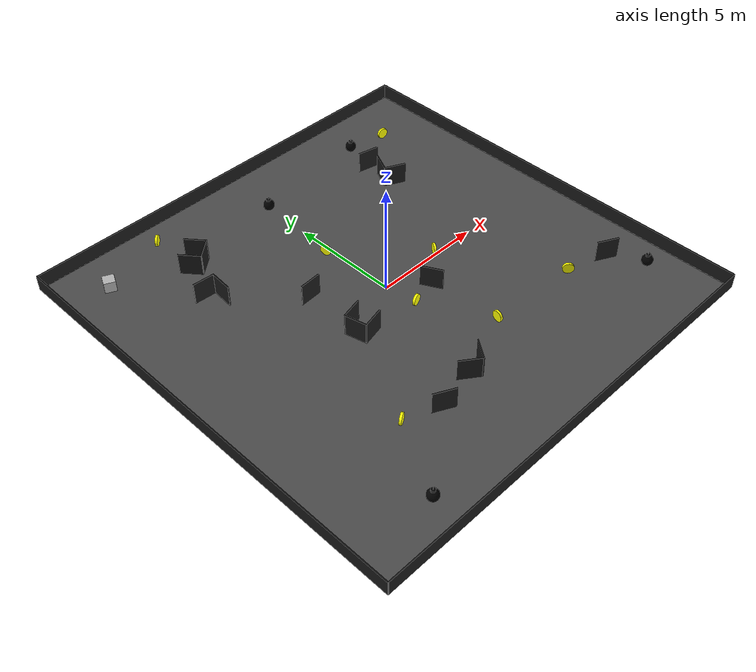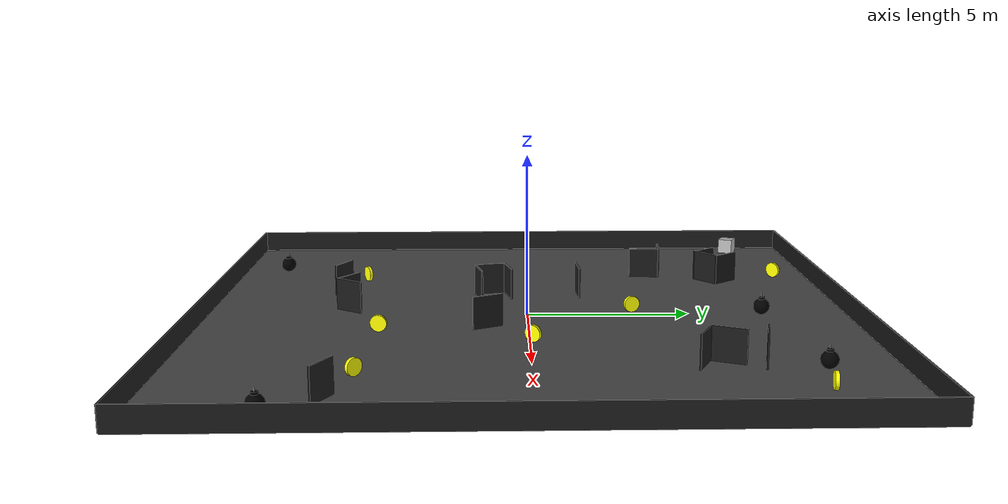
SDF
<sdf version="1.6">
 <world name="default">
  <model name="labrob_ground">
   <static>1</static>
   <link name="link">
    <collision name="collision">
     <geometry><plane><normal>0 0 1</normal><size>20 20</size></plane></geometry>
     <surface><contact><collide_bitmask>2</collide_bitmask></contact></surface>
    </collision>
    <visual name="visual">
     <cast_shadows>0</cast_shadows>
     <geometry><plane><normal>0 0 1</normal><size>20 20</size></plane></geometry>
     <material>
      <script>
       <uri>model://labrob_ground/materials/scripts/</uri>
       <uri>model://labrob_ground/materials/textures/</uri>
       <name>Labrob/AsphaltGround</name>
      </script>
     </material>
    </visual>
   </link>
  </model>
  <light name="sun" type="directional">
   <pose>0 0 10 0 -0 0</pose>
   <diffuse>0.8 0.8 0.8 1</diffuse>
   <specular>0.2 0.2 0.2 1</specular>
   <attenuation>
    <range>1000</range>
    <constant>0.9</constant>
    <linear>0.01</linear>
    <quadratic>0.001</quadratic>
   </attenuation>
   <direction>-0.5 0.1 -0.9</direction>
  </light>
  <model name="borders">
   <static>1</static>
   <link name="chassis_pos_x">
    <pose>10 0 0.35 0 -0 1.57079</pose>
    <collision name="collision_pos_x"><geometry><box><size>20 0.05 0.7</size></box></geometry></collision>
    <visual name="visual">
     <geometry><box><size>20 0.05 0.7</size></box></geometry>
     <material>
      <ambient>0.1 0.1 0.1 1</ambient>
      <diffuse>0.1 0.1 0.1 1</diffuse>
      <specular>0.1 0.1 0.1 1</specular>
      <emissive>0 0 0 0</emissive>
     </material>
    </visual>
    <sensor name="contact_sensor_1" type="contact">
     <plugin name="my_contact_plugin" filename="libgazebo_ros_bumper.so">
      <bumperTopicName>border_bumper</bumperTopicName>
      <frameName>world</frameName>
     </plugin>
     <contact><collision>collision_pos_x</collision><topic>__default_topic__</topic></contact>
    </sensor>
   </link>
   <link name="chassis_neg_x">
    <pose>-10 0 0.35 0 -0 1.57079</pose>
    <collision name="collision_neg_x"><geometry><box><size>20 0.05 0.7</size></box></geometry></collision>
    <visual name="visual">
     <geometry><box><size>20 0.05 0.7</size></box></geometry>
     <material>
      <ambient>0.1 0.1 0.1 1</ambient>
      <diffuse>0.1 0.1 0.1 1</diffuse>
      <specular>0.1 0.1 0.1 1</specular>
      <emissive>0 0 0 0</emissive>
     </material>
    </visual>
    <sensor name="contact_sensor_2" type="contact">
     <plugin name="my_contact_plugin" filename="libgazebo_ros_bumper.so">
      <bumperTopicName>border_bumper</bumperTopicName>
      <frameName>world</frameName>
     </plugin>
     <contact><collision>collision_neg_x</collision><topic>__default_topic__</topic></contact>
    </sensor>
   </link>
   <link name="chassis_pos_y">
    <pose>0 10 0.35 0 -0 0</pose>
    <collision name="collision_pos_y"><geometry><box><size>20 0.05 0.7</size></box></geometry></collision>
    <visual name="visual">
     <geometry><box><size>20 0.05 0.7</size></box></geometry>
     <material>
      <ambient>0.1 0.1 0.1 1</ambient>
      <diffuse>0.1 0.1 0.1 1</diffuse>
      <specular>0.1 0.1 0.1 1</specular>
      <emissive>0 0 0 0</emissive>
     </material>
    </visual>
    <sensor name="contact_sensor_3" type="contact">
     <plugin name="my_contact_plugin" filename="libgazebo_ros_bumper.so">
      <bumperTopicName>border_bumper</bumperTopicName>
      <frameName>world</frameName>
     </plugin>
     <contact><collision>collision_pos_y</collision><topic>__default_topic__</topic></contact>
    </sensor>
   </link>
   <link name="chassis_neg_y">
    <pose>0 -10 0.35 0 -0 0</pose>
    <collision name="collision_neg_y"><geometry><box><size>20 0.05 0.7</size></box></geometry></collision>
    <visual name="visual">
     <geometry><box><size>20 0.05 0.7</size></box></geometry>
     <material>
      <ambient>0.1 0.1 0.1 1</ambient>
      <diffuse>0.1 0.1 0.1 1</diffuse>
      <specular>0.1 0.1 0.1 1</specular>
      <emissive>0 0 0 0</emissive>
     </material>
    </visual>
    <sensor name="contact_sensor_4" type="contact">
     <plugin name="my_contact_plugin" filename="libgazebo_ros_bumper.so">
      <bumperTopicName>border_bumper</bumperTopicName>
      <frameName>world</frameName>
     </plugin>
     <contact><collision>collision_neg_y</collision><topic>__default_topic__</topic></contact>
    </sensor>
   </link>
  </model>
  <gravity>0 0 -9.8</gravity>
  <magnetic_field>6e-06 2.3e-05 -4.2e-05</magnetic_field>
  <atmosphere type="adiabatic"/>
  <physics name="default_physics" default="0" type="ode">
   <max_step_size>0.001</max_step_size>
   <real_time_factor>1</real_time_factor>
   <real_time_update_rate>1000</real_time_update_rate>
  </physics>
  <scene><ambient>0.4 0.4 0.4 1</ambient><background>0.7 0.7 0.7 1</background><shadows>1</shadows></scene>
  <spherical_coordinates>
   <surface_model>EARTH_WGS84</surface_model>
   <latitude_deg>0</latitude_deg>
   <longitude_deg>0</longitude_deg>
   <elevation>0</elevation>
   <heading_deg>0</heading_deg>
  </spherical_coordinates>
  <model name="coin_0">
   <link name="chassis">
    <pose>0 0 0.26 0 -0 0</pose>
    <collision name="box_collision">
     <geometry><sphere><radius>0.25</radius></sphere></geometry>
     <surface>
      <contact><collide_bitmask>1</collide_bitmask><ode><min_depth>10</min_depth><kp>1</kp></ode></contact>
     </surface>
    </collision>
    <visual name="visual">
     <pose>0 0 0 0 1.57 0</pose>
     <geometry><cylinder><radius>0.25</radius><length>0.1</length></cylinder></geometry>
     <material>
      <ambient>1 1 0 1</ambient>
      <diffuse>1 1 0 1</diffuse>
      <specular>0.1 0.1 0.1 1</specular>
      <emissive>0 0 0 0</emissive>
     </material>
    </visual>
    <sensor name="contact_sensor_1" type="contact">
     <plugin name="my_contact_plugin" filename="libgazebo_ros_bumper.so">
      <bumperTopicName>coin_bumper</bumperTopicName>
      <frameName>world</frameName>
     </plugin>
     <contact><collision>box_collision</collision><topic>__default_topic__</topic></contact>
    </sensor>
    <inertial>
     <inertia><ixx>1</ixx><ixy>0</ixy><ixz>0</ixz><iyy>1</iyy><iyz>0</iyz><izz>1</izz></inertia>
     <mass>1</mass>
    </inertial>
   </link>
   <joint name="coin_hinge" type="revolute">
    <pose>0 0 0.26 0 -0 0</pose>
    <child>chassis</child>
    <parent>world</parent>
    <axis>
     <xyz>0 0 1</xyz>
     <use_parent_model_frame>1</use_parent_model_frame>
     <limit><lower>-1e+16</lower><upper>1e+16</upper></limit>
     <dynamics><spring_reference>0</spring_reference><spring_stiffness>0</spring_stiffness></dynamics>
    </axis>
   </joint>
   <pose>0.179485 -1.53193 0 0 -0 1.85607</pose>
  </model>
  <model name="coin_1">
   <link name="chassis">
    <pose>0 0 0.26 0 -0 0</pose>
    <collision name="box_collision">
     <geometry><sphere><radius>0.25</radius></sphere></geometry>
     <surface>
      <contact><collide_bitmask>1</collide_bitmask><ode><min_depth>10</min_depth><kp>1</kp></ode></contact>
     </surface>
    </collision>
    <visual name="visual">
     <pose>0 0 0 0 1.57 0</pose>
     <geometry><cylinder><radius>0.25</radius><length>0.1</length></cylinder></geometry>
     <material>
      <ambient>1 1 0 1</ambient>
      <diffuse>1 1 0 1</diffuse>
      <specular>0.1 0.1 0.1 1</specular>
      <emissive>0 0 0 0</emissive>
     </material>
    </visual>
    <sensor name="contact_sensor_1" type="contact">
     <plugin name="my_contact_plugin" filename="libgazebo_ros_bumper.so">
      <bumperTopicName>coin_bumper</bumperTopicName>
      <frameName>world</frameName>
     </plugin>
     <contact><collision>box_collision</collision><topic>__default_topic__</topic></contact>
    </sensor>
    <inertial>
     <inertia><ixx>1</ixx><ixy>0</ixy><ixz>0</ixz><iyy>1</iyy><iyz>0</iyz><izz>1</izz></inertia>
     <mass>1</mass>
    </inertial>
   </link>
   <joint name="coin_hinge" type="revolute">
    <pose>0 0 0.26 0 -0 0</pose>
    <child>chassis</child>
    <parent>world</parent>
    <axis>
     <xyz>0 0 1</xyz>
     <use_parent_model_frame>1</use_parent_model_frame>
     <limit><lower>-1e+16</lower><upper>1e+16</upper></limit>
     <dynamics><spring_reference>0</spring_reference><spring_stiffness>0</spring_stiffness></dynamics>
    </axis>
   </joint>
   <pose>1.76429 -4.46358 0 0 0 -0.158928</pose>
  </model>
  <model name="coin_2">
   <link name="chassis">
    <pose>0 0 0.26 0 -0 0</pose>
    <collision name="box_collision">
     <geometry><sphere><radius>0.25</radius></sphere></geometry>
     <surface>
      <contact><collide_bitmask>1</collide_bitmask><ode><min_depth>10</min_depth><kp>1</kp></ode></contact>
     </surface>
    </collision>
    <visual name="visual">
     <pose>0 0 0 0 1.57 0</pose>
     <geometry><cylinder><radius>0.25</radius><length>0.1</length></cylinder></geometry>
     <material>
      <ambient>1 1 0 1</ambient>
      <diffuse>1 1 0 1</diffuse>
      <specular>0.1 0.1 0.1 1</specular>
      <emissive>0 0 0 0</emissive>
     </material>
    </visual>
    <sensor name="contact_sensor_1" type="contact">
     <plugin name="my_contact_plugin" filename="libgazebo_ros_bumper.so">
      <bumperTopicName>coin_bumper</bumperTopicName>
      <frameName>world</frameName>
     </plugin>
     <contact><collision>box_collision</collision><topic>__default_topic__</topic></contact>
    </sensor>
    <inertial>
     <inertia><ixx>1</ixx><ixy>0</ixy><ixz>0</ixz><iyy>1</iyy><iyz>0</iyz><izz>1</izz></inertia>
     <mass>1</mass>
    </inertial>
   </link>
   <joint name="coin_hinge" type="revolute">
    <pose>0 0 0.26 0 -0 0</pose>
    <child>chassis</child>
    <parent>world</parent>
    <axis>
     <xyz>0 0 1</xyz>
     <use_parent_model_frame>1</use_parent_model_frame>
     <limit><lower>-1e+16</lower><upper>1e+16</upper></limit>
     <dynamics><spring_reference>0</spring_reference><spring_stiffness>0</spring_stiffness></dynamics>
    </axis>
   </joint>
   <pose>5.98475 -4.69508 0 0 0 -2.35718</pose>
  </model>
  <model name="coin_3">
   <link name="chassis">
    <pose>0 0 0.26 0 -0 0</pose>
    <collision name="box_collision">
     <geometry><sphere><radius>0.25</radius></sphere></geometry>
     <surface>
      <contact><collide_bitmask>1</collide_bitmask><ode><min_depth>10</min_depth><kp>1</kp></ode></contact>
     </surface>
    </collision>
    <visual name="visual">
     <pose>0 0 0 0 1.57 0</pose>
     <geometry><cylinder><radius>0.25</radius><length>0.1</length></cylinder></geometry>
     <material>
      <ambient>1 1 0 1</ambient>
      <diffuse>1 1 0 1</diffuse>
      <specular>0.1 0.1 0.1 1</specular>
      <emissive>0 0 0 0</emissive>
     </material>
    </visual>
    <sensor name="contact_sensor_1" type="contact">
     <plugin name="my_contact_plugin" filename="libgazebo_ros_bumper.so">
      <bumperTopicName>coin_bumper</bumperTopicName>
      <frameName>world</frameName>
     </plugin>
     <contact><collision>box_collision</collision><topic>__default_topic__</topic></contact>
    </sensor>
    <inertial>
     <inertia><ixx>1</ixx><ixy>0</ixy><ixz>0</ixz><iyy>1</iyy><iyz>0</iyz><izz>1</izz></inertia>
     <mass>1</mass>
    </inertial>
   </link>
   <joint name="coin_hinge" type="revolute">
    <pose>0 0 0.26 0 -0 0</pose>
    <child>chassis</child>
    <parent>world</parent>
    <axis>
     <xyz>0 0 1</xyz>
     <use_parent_model_frame>1</use_parent_model_frame>
     <limit><lower>-1e+16</lower><upper>1e+16</upper></limit>
     <dynamics><spring_reference>0</spring_reference><spring_stiffness>0</spring_stiffness></dynamics>
    </axis>
   </joint>
   <pose>-4.69873 -5.44036 0 0 -0 2.09927</pose>
  </model>
  <model name="coin_6">
   <link name="chassis">
    <pose>0 0 0.26 0 -0 0</pose>
    <collision name="box_collision">
     <geometry><sphere><radius>0.25</radius></sphere></geometry>
     <surface>
      <contact><collide_bitmask>1</collide_bitmask><ode><min_depth>10</min_depth><kp>1</kp></ode></contact>
     </surface>
    </collision>
    <visual name="visual">
     <pose>0 0 0 0 1.57 0</pose>
     <geometry><cylinder><radius>0.25</radius><length>0.1</length></cylinder></geometry>
     <material>
      <ambient>1 1 0 1</ambient>
      <diffuse>1 1 0 1</diffuse>
      <specular>0.1 0.1 0.1 1</specular>
      <emissive>0 0 0 0</emissive>
     </material>
    </visual>
    <sensor name="contact_sensor_1" type="contact">
     <plugin name="my_contact_plugin" filename="libgazebo_ros_bumper.so">
      <bumperTopicName>coin_bumper</bumperTopicName>
      <frameName>world</frameName>
     </plugin>
     <contact><collision>box_collision</collision><topic>__default_topic__</topic></contact>
    </sensor>
    <inertial>
     <inertia><ixx>1</ixx><ixy>0</ixy><ixz>0</ixz><iyy>1</iyy><iyz>0</iyz><izz>1</izz></inertia>
     <mass>1</mass>
    </inertial>
   </link>
   <joint name="coin_hinge" type="revolute">
    <pose>0 0 0.26 0 -0 0</pose>
    <child>chassis</child>
    <parent>world</parent>
    <axis>
     <xyz>0 0 1</xyz>
     <use_parent_model_frame>1</use_parent_model_frame>
     <limit><lower>-1e+16</lower><upper>1e+16</upper></limit>
     <dynamics><spring_reference>0</spring_reference><spring_stiffness>0</spring_stiffness></dynamics>
    </axis>
   </joint>
   <pose>-4.94528 8.82124 0 0 -0 2.32258</pose>
  </model>
  <model name="coin_7">
   <link name="chassis">
    <pose>0 0 0.26 0 -0 0</pose>
    <collision name="box_collision">
     <geometry><sphere><radius>0.25</radius></sphere></geometry>
     <surface>
      <contact><collide_bitmask>1</collide_bitmask><ode><min_depth>10</min_depth><kp>1</kp></ode></contact>
     </surface>
    </collision>
    <visual name="visual">
     <pose>0 0 0 0 1.57 0</pose>
     <geometry><cylinder><radius>0.25</radius><length>0.1</length></cylinder></geometry>
     <material>
      <ambient>1 1 0 1</ambient>
      <diffuse>1 1 0 1</diffuse>
      <specular>0.1 0.1 0.1 1</specular>
      <emissive>0 0 0 0</emissive>
     </material>
    </visual>
    <sensor name="contact_sensor_1" type="contact">
     <plugin name="my_contact_plugin" filename="libgazebo_ros_bumper.so">
      <bumperTopicName>coin_bumper</bumperTopicName>
      <frameName>world</frameName>
     </plugin>
     <contact><collision>box_collision</collision><topic>__default_topic__</topic></contact>
    </sensor>
    <inertial>
     <inertia><ixx>1</ixx><ixy>0</ixy><ixz>0</ixz><iyy>1</iyy><iyz>0</iyz><izz>1</izz></inertia>
     <mass>1</mass>
    </inertial>
   </link>
   <joint name="coin_hinge" type="revolute">
    <pose>0 0 0.26 0 -0 0</pose>
    <child>chassis</child>
    <parent>world</parent>
    <axis>
     <xyz>0 0 1</xyz>
     <use_parent_model_frame>1</use_parent_model_frame>
     <limit><lower>-1e+16</lower><upper>1e+16</upper></limit>
     <dynamics><spring_reference>0</spring_reference><spring_stiffness>0</spring_stiffness></dynamics>
    </axis>
   </joint>
   <pose>-0.293643 3.28118 0 0 -0 0.317468</pose>
  </model>
  <model name="coin_8">
   <link name="chassis">
    <pose>0 0 0.26 0 -0 0</pose>
    <collision name="box_collision">
     <geometry><sphere><radius>0.25</radius></sphere></geometry>
     <surface>
      <contact><collide_bitmask>1</collide_bitmask><ode><min_depth>10</min_depth><kp>1</kp></ode></contact>
     </surface>
    </collision>
    <visual name="visual">
     <pose>0 0 0 0 1.57 0</pose>
     <geometry><cylinder><radius>0.25</radius><length>0.1</length></cylinder></geometry>
     <material>
      <ambient>1 1 0 1</ambient>
      <diffuse>1 1 0 1</diffuse>
      <specular>0.1 0.1 0.1 1</specular>
      <emissive>0 0 0 0</emissive>
     </material>
    </visual>
    <sensor name="contact_sensor_1" type="contact">
     <plugin name="my_contact_plugin" filename="libgazebo_ros_bumper.so">
      <bumperTopicName>coin_bumper</bumperTopicName>
      <frameName>world</frameName>
     </plugin>
     <contact><collision>box_collision</collision><topic>__default_topic__</topic></contact>
    </sensor>
    <inertial>
     <inertia><ixx>1</ixx><ixy>0</ixy><ixz>0</ixz><iyy>1</iyy><iyz>0</iyz><izz>1</izz></inertia>
     <mass>1</mass>
    </inertial>
   </link>
   <joint name="coin_hinge" type="revolute">
    <pose>0 0 0.26 0 -0 0</pose>
    <child>chassis</child>
    <parent>world</parent>
    <axis>
     <xyz>0 0 1</xyz>
     <use_parent_model_frame>1</use_parent_model_frame>
     <limit><lower>-1e+16</lower><upper>1e+16</upper></limit>
     <dynamics><spring_reference>0</spring_reference><spring_stiffness>0</spring_stiffness></dynamics>
    </axis>
   </joint>
   <pose>7.4107 7.5913 0 0 0 -1.68753</pose>
  </model>
  <model name="coin_9">
   <link name="chassis">
    <pose>0 0 0.26 0 -0 0</pose>
    <collision name="box_collision">
     <geometry><sphere><radius>0.25</radius></sphere></geometry>
     <surface>
      <contact><collide_bitmask>1</collide_bitmask><ode><min_depth>10</min_depth><kp>1</kp></ode></contact>
     </surface>
    </collision>
    <visual name="visual">
     <pose>0 0 0 0 1.57 0</pose>
     <geometry><cylinder><radius>0.25</radius><length>0.1</length></cylinder></geometry>
     <material>
      <ambient>1 1 0 1</ambient>
      <diffuse>1 1 0 1</diffuse>
      <specular>0.1 0.1 0.1 1</specular>
      <emissive>0 0 0 0</emissive>
     </material>
    </visual>
    <sensor name="contact_sensor_1" type="contact">
     <plugin name="my_contact_plugin" filename="libgazebo_ros_bumper.so">
      <bumperTopicName>coin_bumper</bumperTopicName>
      <frameName>world</frameName>
     </plugin>
     <contact><collision>box_collision</collision><topic>__default_topic__</topic></contact>
    </sensor>
    <inertial>
     <inertia><ixx>1</ixx><ixy>0</ixy><ixz>0</ixz><iyy>1</iyy><iyz>0</iyz><izz>1</izz></inertia>
     <mass>1</mass>
    </inertial>
   </link>
   <joint name="coin_hinge" type="revolute">
    <pose>0 0 0.26 0 -0 0</pose>
    <child>chassis</child>
    <parent>world</parent>
    <axis>
     <xyz>0 0 1</xyz>
     <use_parent_model_frame>1</use_parent_model_frame>
     <limit><lower>-1e+16</lower><upper>1e+16</upper></limit>
     <dynamics><spring_reference>0</spring_reference><spring_stiffness>0</spring_stiffness></dynamics>
    </axis>
   </joint>
   <pose>2.96582 0.086113 0 0 -0 2.58066</pose>
  </model>
  <model name="bomb_0">
   <link name="chassis">
    <pose>0 0 0.25 0 -0 0</pose>
    <collision name="box_collision">
     <geometry><sphere><radius>0.25</radius></sphere></geometry>
     <surface>
      <contact><collide_bitmask>1</collide_bitmask><ode><min_depth>10</min_depth><kp>1</kp></ode></contact>
     </surface>
    </collision>
    <visual name="visual">
     <pose>0 0 0.2 0 -0 0</pose>
     <geometry><cylinder><radius>0.1</radius><length>0.2</length></cylinder></geometry>
     <material>
      <ambient>0 0 0 1</ambient>
      <diffuse>0 0 0 1</diffuse>
      <specular>0.1 0.1 0.1 1</specular>
      <emissive>0 0 0 0</emissive>
     </material>
    </visual>
    <visual name="visual2">
     <geometry><sphere><radius>0.25</radius></sphere></geometry>
     <material>
      <ambient>0 0 0 1</ambient>
      <diffuse>0 0 0 1</diffuse>
      <specular>0.1 0.1 0.1 1</specular>
      <emissive>0 0 0 0</emissive>
     </material>
    </visual>
    <visual name="visual3">
     <pose>0 0 0.3 0 -0 0</pose>
     <geometry><cylinder><radius>0.01</radius><length>0.2</length></cylinder></geometry>
     <material>
      <ambient>1 1 1 1</ambient>
      <diffuse>1 1 1 1</diffuse>
      <specular>0.1 0.1 0.1 1</specular>
      <emissive>0 0 0 0</emissive>
     </material>
    </visual>
    <sensor name="contact_sensor_1" type="contact">
     <plugin name="my_contact_plugin" filename="libgazebo_ros_bumper.so">
      <bumperTopicName>bomb_bumper</bumperTopicName>
      <frameName>world</frameName>
     </plugin>
     <contact><collision>box_collision</collision><topic>__default_topic__</topic></contact>
    </sensor>
    <inertial>
     <inertia><ixx>1</ixx><ixy>0</ixy><ixz>0</ixz><iyy>1</iyy><iyz>0</iyz><izz>1</izz></inertia>
     <mass>1</mass>
    </inertial>
   </link>
   <joint name="bomb_hinge" type="revolute">
    <pose>0 0 0.2 0 -0 0</pose>
    <child>chassis</child>
    <parent>world</parent>
    <axis>
     <xyz>0 0 0</xyz>
     <use_parent_model_frame>1</use_parent_model_frame>
     <limit><lower>-1e+16</lower><upper>1e+16</upper></limit>
     <dynamics><spring_reference>0</spring_reference><spring_stiffness>0</spring_stiffness></dynamics>
    </axis>
   </joint>
   <pose>8.72929 -6.70741 0 0 -0 0</pose>
  </model>
  <model name="bomb_1">
   <link name="chassis">
    <pose>0 0 0.25 0 -0 0</pose>
    <collision name="box_collision">
     <geometry><sphere><radius>0.25</radius></sphere></geometry>
     <surface>
      <contact><collide_bitmask>1</collide_bitmask><ode><min_depth>10</min_depth><kp>1</kp></ode></contact>
     </surface>
    </collision>
    <visual name="visual">
     <pose>0 0 0.2 0 -0 0</pose>
     <geometry><cylinder><radius>0.1</radius><length>0.2</length></cylinder></geometry>
     <material>
      <ambient>0 0 0 1</ambient>
      <diffuse>0 0 0 1</diffuse>
      <specular>0.1 0.1 0.1 1</specular>
      <emissive>0 0 0 0</emissive>
     </material>
    </visual>
    <visual name="visual2">
     <geometry><sphere><radius>0.25</radius></sphere></geometry>
     <material>
      <ambient>0 0 0 1</ambient>
      <diffuse>0 0 0 1</diffuse>
      <specular>0.1 0.1 0.1 1</specular>
      <emissive>0 0 0 0</emissive>
     </material>
    </visual>
    <visual name="visual3">
     <pose>0 0 0.3 0 -0 0</pose>
     <geometry><cylinder><radius>0.01</radius><length>0.2</length></cylinder></geometry>
     <material>
      <ambient>1 1 1 1</ambient>
      <diffuse>1 1 1 1</diffuse>
      <specular>0.1 0.1 0.1 1</specular>
      <emissive>0 0 0 0</emissive>
     </material>
    </visual>
    <sensor name="contact_sensor_1" type="contact">
     <plugin name="my_contact_plugin" filename="libgazebo_ros_bumper.so">
      <bumperTopicName>bomb_bumper</bumperTopicName>
      <frameName>world</frameName>
     </plugin>
     <contact><collision>box_collision</collision><topic>__default_topic__</topic></contact>
    </sensor>
    <inertial>
     <inertia><ixx>1</ixx><ixy>0</ixy><ixz>0</ixz><iyy>1</iyy><iyz>0</iyz><izz>1</izz></inertia>
     <mass>1</mass>
    </inertial>
   </link>
   <joint name="bomb_hinge" type="revolute">
    <pose>0 0 0.2 0 -0 0</pose>
    <child>chassis</child>
    <parent>world</parent>
    <axis>
     <xyz>0 0 0</xyz>
     <use_parent_model_frame>1</use_parent_model_frame>
     <limit><lower>-1e+16</lower><upper>1e+16</upper></limit>
     <dynamics><spring_reference>0</spring_reference><spring_stiffness>0</spring_stiffness></dynamics>
    </axis>
   </joint>
   <pose>-6.34067 -8.50757 1e-06 0.001707 -0 0</pose>
  </model>
  <model name="bomb_3">
   <link name="chassis">
    <pose>0 0 0.25 0 -0 0</pose>
    <collision name="box_collision">
     <geometry><sphere><radius>0.25</radius></sphere></geometry>
     <surface>
      <contact><collide_bitmask>1</collide_bitmask><ode><min_depth>10</min_depth><kp>1</kp></ode></contact>
     </surface>
    </collision>
    <visual name="visual">
     <pose>0 0 0.2 0 -0 0</pose>
     <geometry><cylinder><radius>0.1</radius><length>0.2</length></cylinder></geometry>
     <material>
      <ambient>0 0 0 1</ambient>
      <diffuse>0 0 0 1</diffuse>
      <specular>0.1 0.1 0.1 1</specular>
      <emissive>0 0 0 0</emissive>
     </material>
    </visual>
    <visual name="visual2">
     <geometry><sphere><radius>0.25</radius></sphere></geometry>
     <material>
      <ambient>0 0 0 1</ambient>
      <diffuse>0 0 0 1</diffuse>
      <specular>0.1 0.1 0.1 1</specular>
      <emissive>0 0 0 0</emissive>
     </material>
    </visual>
    <visual name="visual3">
     <pose>0 0 0.3 0 -0 0</pose>
     <geometry><cylinder><radius>0.01</radius><length>0.2</length></cylinder></geometry>
     <material>
      <ambient>1 1 1 1</ambient>
      <diffuse>1 1 1 1</diffuse>
      <specular>0.1 0.1 0.1 1</specular>
      <emissive>0 0 0 0</emissive>
     </material>
    </visual>
    <sensor name="contact_sensor_1" type="contact">
     <plugin name="my_contact_plugin" filename="libgazebo_ros_bumper.so">
      <bumperTopicName>bomb_bumper</bumperTopicName>
      <frameName>world</frameName>
     </plugin>
     <contact><collision>box_collision</collision><topic>__default_topic__</topic></contact>
    </sensor>
    <inertial>
     <inertia><ixx>1</ixx><ixy>0</ixy><ixz>0</ixz><iyy>1</iyy><iyz>0</iyz><izz>1</izz></inertia>
     <mass>1</mass>
    </inertial>
   </link>
   <joint name="bomb_hinge" type="revolute">
    <pose>0 0 0.2 0 -0 0</pose>
    <child>chassis</child>
    <parent>world</parent>
    <axis>
     <xyz>0 0 0</xyz>
     <use_parent_model_frame>1</use_parent_model_frame>
     <limit><lower>-1e+16</lower><upper>1e+16</upper></limit>
     <dynamics><spring_reference>0</spring_reference><spring_stiffness>0</spring_stiffness></dynamics>
    </axis>
   </joint>
   <pose>0.012015 7.3203 0 0 -0 0</pose>
  </model>
  <model name="bomb_4">
   <link name="chassis">
    <pose>0 0 0.25 0 -0 0</pose>
    <collision name="box_collision">
     <geometry><sphere><radius>0.25</radius></sphere></geometry>
     <surface>
      <contact><collide_bitmask>1</collide_bitmask><ode><min_depth>10</min_depth><kp>1</kp></ode></contact>
     </surface>
    </collision>
    <visual name="visual">
     <pose>0 0 0.2 0 -0 0</pose>
     <geometry><cylinder><radius>0.1</radius><length>0.2</length></cylinder></geometry>
     <material>
      <ambient>0 0 0 1</ambient>
      <diffuse>0 0 0 1</diffuse>
      <specular>0.1 0.1 0.1 1</specular>
      <emissive>0 0 0 0</emissive>
     </material>
    </visual>
    <visual name="visual2">
     <geometry><sphere><radius>0.25</radius></sphere></geometry>
     <material>
      <ambient>0 0 0 1</ambient>
      <diffuse>0 0 0 1</diffuse>
      <specular>0.1 0.1 0.1 1</specular>
      <emissive>0 0 0 0</emissive>
     </material>
    </visual>
    <visual name="visual3">
     <pose>0 0 0.3 0 -0 0</pose>
     <geometry><cylinder><radius>0.01</radius><length>0.2</length></cylinder></geometry>
     <material>
      <ambient>1 1 1 1</ambient>
      <diffuse>1 1 1 1</diffuse>
      <specular>0.1 0.1 0.1 1</specular>
      <emissive>0 0 0 0</emissive>
     </material>
    </visual>
    <sensor name="contact_sensor_1" type="contact">
     <plugin name="my_contact_plugin" filename="libgazebo_ros_bumper.so">
      <bumperTopicName>bomb_bumper</bumperTopicName>
      <frameName>world</frameName>
     </plugin>
     <contact><collision>box_collision</collision><topic>__default_topic__</topic></contact>
    </sensor>
    <inertial>
     <inertia><ixx>1</ixx><ixy>0</ixy><ixz>0</ixz><iyy>1</iyy><iyz>0</iyz><izz>1</izz></inertia>
     <mass>1</mass>
    </inertial>
   </link>
   <joint name="bomb_hinge" type="revolute">
    <pose>0 0 0.2 0 -0 0</pose>
    <child>chassis</child>
    <parent>world</parent>
    <axis>
     <xyz>0 0 0</xyz>
     <use_parent_model_frame>1</use_parent_model_frame>
     <limit><lower>-1e+16</lower><upper>1e+16</upper></limit>
     <dynamics><spring_reference>0</spring_reference><spring_stiffness>0</spring_stiffness></dynamics>
    </axis>
   </joint>
   <pose>5.61305 7.92236 0 0 -0 0</pose>
  </model>
  <model name="wall_1_0">
   <static>1</static>
   <link name="chassis">
    <pose>0 0 0.5 0 -0 0</pose>
    <collision name="barrier_collision"><geometry><box><size>1 0.05 1</size></box></geometry></collision>
    <visual name="visual">
     <geometry><box><size>1 0.05 1</size></box></geometry>
     <material>
      <ambient>0.1 0.1 0.1 1</ambient>
      <diffuse>0.1 0.1 0.1 1</diffuse>
      <specular>0.1 0.1 0.1 1</specular>
      <emissive>0 0 0 0</emissive>
     </material>
    </visual>
    <sensor name="contact_sensor_1" type="contact">
     <plugin name="my_contact_plugin" filename="libgazebo_ros_bumper.so">
      <bumperTopicName>obstacle_bumper</bumperTopicName>
      <frameName>world</frameName>
     </plugin>
     <contact><collision>barrier_collision</collision><topic>__default_topic__</topic></contact>
    </sensor>
   </link>
   <pose>7.82204 -5.25957 0 0 -0 2.67259</pose>
  </model>
  <model name="wall_1_1">
   <static>1</static>
   <link name="chassis">
    <pose>0 0 0.5 0 -0 0</pose>
    <collision name="barrier_collision"><geometry><box><size>1 0.05 1</size></box></geometry></collision>
    <visual name="visual">
     <geometry><box><size>1 0.05 1</size></box></geometry>
     <material>
      <ambient>0.1 0.1 0.1 1</ambient>
      <diffuse>0.1 0.1 0.1 1</diffuse>
      <specular>0.1 0.1 0.1 1</specular>
      <emissive>0 0 0 0</emissive>
     </material>
    </visual>
    <sensor name="contact_sensor_1" type="contact">
     <plugin name="my_contact_plugin" filename="libgazebo_ros_bumper.so">
      <bumperTopicName>obstacle_bumper</bumperTopicName>
      <frameName>world</frameName>
     </plugin>
     <contact><collision>barrier_collision</collision><topic>__default_topic__</topic></contact>
    </sensor>
   </link>
   <pose>1.3903 -1.2272 0 0 -0 2.05311</pose>
  </model>
  <model name="wall_1_2">
   <static>1</static>
   <link name="chassis">
    <pose>0 0 0.5 0 -0 0</pose>
    <collision name="barrier_collision"><geometry><box><size>1 0.05 1</size></box></geometry></collision>
    <visual name="visual">
     <geometry><box><size>1 0.05 1</size></box></geometry>
     <material>
      <ambient>0.1 0.1 0.1 1</ambient>
      <diffuse>0.1 0.1 0.1 1</diffuse>
      <specular>0.1 0.1 0.1 1</specular>
      <emissive>0 0 0 0</emissive>
     </material>
    </visual>
    <sensor name="contact_sensor_1" type="contact">
     <plugin name="my_contact_plugin" filename="libgazebo_ros_bumper.so">
      <bumperTopicName>obstacle_bumper</bumperTopicName>
      <frameName>world</frameName>
     </plugin>
     <contact><collision>barrier_collision</collision><topic>__default_topic__</topic></contact>
    </sensor>
   </link>
   <pose>-3.13099 -6.07933 0 0 0 -0.460154</pose>
  </model>
  <model name="wall_2_0">
   <static>1</static>
   <link name="chassis">
    <pose>0 0 0.5 0 -0 0</pose>
    <collision name="barrier_collision"><geometry><box><size>1 0.05 1</size></box></geometry></collision>
    <visual name="visual">
     <geometry><box><size>1 0.05 1</size></box></geometry>
     <material>
      <ambient>0.1 0.1 0.1 1</ambient>
      <diffuse>0.1 0.1 0.1 1</diffuse>
      <specular>0.1 0.1 0.1 1</specular>
      <emissive>0 0 0 0</emissive>
     </material>
    </visual>
    <collision name="barrier_collision2">
     <pose>-0.475 0.525 0 0 -0 1.57</pose>
     <geometry><box><size>1 0.05 1</size></box></geometry>
    </collision>
    <visual name="visual2">
     <pose>-0.475 0.525 0 0 -0 1.57</pose>
     <geometry><box><size>1 0.05 1</size></box></geometry>
     <material>
      <ambient>0.1 0.1 0.1 1</ambient>
      <diffuse>0.1 0.1 0.1 1</diffuse>
      <specular>0.1 0.1 0.1 1</specular>
      <emissive>0 0 0 0</emissive>
     </material>
    </visual>
    <sensor name="contact_sensor_1" type="contact">
     <plugin name="my_contact_plugin" filename="libgazebo_ros_bumper.so">
      <bumperTopicName>obstacle_bumper</bumperTopicName>
      <frameName>world</frameName>
     </plugin>
     <contact><collision>barrier_collision</collision><topic>__default_topic__</topic></contact>
    </sensor>
    <sensor name="contact_sensor_2" type="contact">
     <plugin name="my_contact_plugin" filename="libgazebo_ros_bumper.so">
      <bumperTopicName>obstacle_bumper</bumperTopicName>
      <frameName>world</frameName>
     </plugin>
     <contact><collision>barrier_collision2</collision><topic>__default_topic__</topic></contact>
    </sensor>
   </link>
   <pose>-0.614454 -5.61156 0 0 -0 0.955773</pose>
  </model>
  <model name="wall_3_0">
   <static>1</static>
   <link name="chassis">
    <pose>0 0 0.5 0 -0 0</pose>
    <collision name="collision"><geometry><box><size>1 0.05 1</size></box></geometry></collision>
    <visual name="visual">
     <geometry><box><size>1 0.05 1</size></box></geometry>
     <material>
      <ambient>0.1 0.1 0.1 1</ambient>
      <diffuse>0.1 0.1 0.1 1</diffuse>
      <specular>0.1 0.1 0.1 1</specular>
      <emissive>0 0 0 0</emissive>
     </material>
    </visual>
    <collision name="collision2">
     <pose>-0.475 0.525 0 0 -0 1.57</pose>
     <geometry><box><size>1 0.05 1</size></box></geometry>
    </collision>
    <visual name="visual2">
     <pose>-0.475 0.525 0 0 -0 1.57</pose>
     <geometry><box><size>1 0.05 1</size></box></geometry>
     <material>
      <ambient>0.1 0.1 0.1 1</ambient>
      <diffuse>0.1 0.1 0.1 1</diffuse>
      <specular>0.1 0.1 0.1 1</specular>
      <emissive>0 0 0 0</emissive>
     </material>
    </visual>
    <collision name="collision3">
     <pose>0 1 0 0 -0 0</pose>
     <geometry><box><size>1 0.05 1</size></box></geometry>
    </collision>
    <visual name="visual3">
     <pose>0 1 0 0 -0 0</pose>
     <geometry><box><size>1 0.05 1</size></box></geometry>
     <material>
      <ambient>0.1 0.1 0.1 1</ambient>
      <diffuse>0.1 0.1 0.1 1</diffuse>
      <specular>0.1 0.1 0.1 1</specular>
      <emissive>0 0 0 0</emissive>
     </material>
    </visual>
    <sensor name="contact_sensor_1" type="contact">
     <plugin name="my_contact_plugin" filename="libgazebo_ros_bumper.so">
      <bumperTopicName>obstacle_bumper</bumperTopicName>
      <frameName>world</frameName>
     </plugin>
     <contact><collision>collision</collision><topic>__default_topic__</topic></contact>
    </sensor>
    <sensor name="contact_sensor_2" type="contact">
     <plugin name="my_contact_plugin" filename="libgazebo_ros_bumper.so">
      <bumperTopicName>obstacle_bumper</bumperTopicName>
      <frameName>world</frameName>
     </plugin>
     <contact><collision>collision2</collision><topic>__default_topic__</topic></contact>
    </sensor>
    <sensor name="contact_sensor_3" type="contact">
     <plugin name="my_contact_plugin" filename="libgazebo_ros_bumper.so">
      <bumperTopicName>obstacle_bumper</bumperTopicName>
      <frameName>world</frameName>
     </plugin>
     <contact><collision>collision3</collision><topic>__default_topic__</topic></contact>
    </sensor>
   </link>
   <pose>-2.28394 -1.55685 0 0 -0 0.238958</pose>
  </model>
  <model name="wall_1_3">
   <static>1</static>
   <link name="chassis">
    <pose>0 0 0.5 0 -0 0</pose>
    <collision name="barrier_collision"><geometry><box><size>1 0.05 1</size></box></geometry></collision>
    <visual name="visual">
     <geometry><box><size>1 0.05 1</size></box></geometry>
     <material>
      <ambient>0.1 0.1 0.1 1</ambient>
      <diffuse>0.1 0.1 0.1 1</diffuse>
      <specular>0.1 0.1 0.1 1</specular>
      <emissive>0 0 0 0</emissive>
     </material>
    </visual>
    <sensor name="contact_sensor_1" type="contact">
     <plugin name="my_contact_plugin" filename="libgazebo_ros_bumper.so">
      <bumperTopicName>obstacle_bumper</bumperTopicName>
      <frameName>world</frameName>
     </plugin>
     <contact><collision>barrier_collision</collision><topic>__default_topic__</topic></contact>
    </sensor>
   </link>
   <pose>-2.57759 1.72433 0 0 -0 0.070811</pose>
  </model>
  <model name="wall_2_1">
   <static>1</static>
   <link name="chassis">
    <pose>0 0 0.5 0 -0 0</pose>
    <collision name="barrier_collision"><geometry><box><size>1 0.05 1</size></box></geometry></collision>
    <visual name="visual">
     <geometry><box><size>1 0.05 1</size></box></geometry>
     <material>
      <ambient>0.1 0.1 0.1 1</ambient>
      <diffuse>0.1 0.1 0.1 1</diffuse>
      <specular>0.1 0.1 0.1 1</specular>
      <emissive>0 0 0 0</emissive>
     </material>
    </visual>
    <collision name="barrier_collision2">
     <pose>-0.475 0.525 0 0 -0 1.57</pose>
     <geometry><box><size>1 0.05 1</size></box></geometry>
    </collision>
    <visual name="visual2">
     <pose>-0.475 0.525 0 0 -0 1.57</pose>
     <geometry><box><size>1 0.05 1</size></box></geometry>
     <material>
      <ambient>0.1 0.1 0.1 1</ambient>
      <diffuse>0.1 0.1 0.1 1</diffuse>
      <specular>0.1 0.1 0.1 1</specular>
      <emissive>0 0 0 0</emissive>
     </material>
    </visual>
    <sensor name="contact_sensor_1" type="contact">
     <plugin name="my_contact_plugin" filename="libgazebo_ros_bumper.so">
      <bumperTopicName>obstacle_bumper</bumperTopicName>
      <frameName>world</frameName>
     </plugin>
     <contact><collision>barrier_collision</collision><topic>__default_topic__</topic></contact>
    </sensor>
    <sensor name="contact_sensor_2" type="contact">
     <plugin name="my_contact_plugin" filename="libgazebo_ros_bumper.so">
      <bumperTopicName>obstacle_bumper</bumperTopicName>
      <frameName>world</frameName>
     </plugin>
     <contact><collision>barrier_collision2</collision><topic>__default_topic__</topic></contact>
    </sensor>
   </link>
   <pose>-5.53819 4.78923 0 0 -0 3.07081</pose>
  </model>
  <model name="wall_3_1">
   <static>1</static>
   <link name="chassis">
    <pose>0 0 0.5 0 -0 0</pose>
    <collision name="collision"><geometry><box><size>1 0.05 1</size></box></geometry></collision>
    <visual name="visual">
     <geometry><box><size>1 0.05 1</size></box></geometry>
     <material>
      <ambient>0.1 0.1 0.1 1</ambient>
      <diffuse>0.1 0.1 0.1 1</diffuse>
      <specular>0.1 0.1 0.1 1</specular>
      <emissive>0 0 0 0</emissive>
     </material>
    </visual>
    <collision name="collision2">
     <pose>-0.475 0.525 0 0 -0 1.57</pose>
     <geometry><box><size>1 0.05 1</size></box></geometry>
    </collision>
    <visual name="visual2">
     <pose>-0.475 0.525 0 0 -0 1.57</pose>
     <geometry><box><size>1 0.05 1</size></box></geometry>
     <material>
      <ambient>0.1 0.1 0.1 1</ambient>
      <diffuse>0.1 0.1 0.1 1</diffuse>
      <specular>0.1 0.1 0.1 1</specular>
      <emissive>0 0 0 0</emissive>
     </material>
    </visual>
    <collision name="collision3">
     <pose>0 1 0 0 -0 0</pose>
     <geometry><box><size>1 0.05 1</size></box></geometry>
    </collision>
    <visual name="visual3">
     <pose>0 1 0 0 -0 0</pose>
     <geometry><box><size>1 0.05 1</size></box></geometry>
     <material>
      <ambient>0.1 0.1 0.1 1</ambient>
      <diffuse>0.1 0.1 0.1 1</diffuse>
      <specular>0.1 0.1 0.1 1</specular>
      <emissive>0 0 0 0</emissive>
     </material>
    </visual>
    <sensor name="contact_sensor_1" type="contact">
     <plugin name="my_contact_plugin" filename="libgazebo_ros_bumper.so">
      <bumperTopicName>obstacle_bumper</bumperTopicName>
      <frameName>world</frameName>
     </plugin>
     <contact><collision>collision</collision><topic>__default_topic__</topic></contact>
    </sensor>
    <sensor name="contact_sensor_2" type="contact">
     <plugin name="my_contact_plugin" filename="libgazebo_ros_bumper.so">
      <bumperTopicName>obstacle_bumper</bumperTopicName>
      <frameName>world</frameName>
     </plugin>
     <contact><collision>collision2</collision><topic>__default_topic__</topic></contact>
    </sensor>
    <sensor name="contact_sensor_3" type="contact">
     <plugin name="my_contact_plugin" filename="libgazebo_ros_bumper.so">
      <bumperTopicName>obstacle_bumper</bumperTopicName>
      <frameName>world</frameName>
     </plugin>
     <contact><collision>collision3</collision><topic>__default_topic__</topic></contact>
    </sensor>
   </link>
   <pose>-4.257 6.98275 0 0 -0 2.25666</pose>
  </model>
  <model name="wall_1_4">
   <static>1</static>
   <link name="chassis">
    <pose>0 0 0.5 0 -0 0</pose>
    <collision name="barrier_collision"><geometry><box><size>1 0.05 1</size></box></geometry></collision>
    <visual name="visual">
     <geometry><box><size>1 0.05 1</size></box></geometry>
     <material>
      <ambient>0.1 0.1 0.1 1</ambient>
      <diffuse>0.1 0.1 0.1 1</diffuse>
      <specular>0.1 0.1 0.1 1</specular>
      <emissive>0 0 0 0</emissive>
     </material>
    </visual>
    <sensor name="contact_sensor_1" type="contact">
     <plugin name="my_contact_plugin" filename="libgazebo_ros_bumper.so">
      <bumperTopicName>obstacle_bumper</bumperTopicName>
      <frameName>world</frameName>
     </plugin>
     <contact><collision>barrier_collision</collision><topic>__default_topic__</topic></contact>
    </sensor>
   </link>
   <pose>5.23467 6.34425 0 0 -0 2.93807</pose>
  </model>
  <model name="wall_2_2">
   <static>1</static>
   <link name="chassis">
    <pose>0 0 0.5 0 -0 0</pose>
    <collision name="barrier_collision"><geometry><box><size>1 0.05 1</size></box></geometry></collision>
    <visual name="visual">
     <geometry><box><size>1 0.05 1</size></box></geometry>
     <material>
      <ambient>0.1 0.1 0.1 1</ambient>
      <diffuse>0.1 0.1 0.1 1</diffuse>
      <specular>0.1 0.1 0.1 1</specular>
      <emissive>0 0 0 0</emissive>
     </material>
    </visual>
    <collision name="barrier_collision2">
     <pose>-0.475 0.525 0 0 -0 1.57</pose>
     <geometry><box><size>1 0.05 1</size></box></geometry>
    </collision>
    <visual name="visual2">
     <pose>-0.475 0.525 0 0 -0 1.57</pose>
     <geometry><box><size>1 0.05 1</size></box></geometry>
     <material>
      <ambient>0.1 0.1 0.1 1</ambient>
      <diffuse>0.1 0.1 0.1 1</diffuse>
      <specular>0.1 0.1 0.1 1</specular>
      <emissive>0 0 0 0</emissive>
     </material>
    </visual>
    <sensor name="contact_sensor_1" type="contact">
     <plugin name="my_contact_plugin" filename="libgazebo_ros_bumper.so">
      <bumperTopicName>obstacle_bumper</bumperTopicName>
      <frameName>world</frameName>
     </plugin>
     <contact><collision>barrier_collision</collision><topic>__default_topic__</topic></contact>
    </sensor>
    <sensor name="contact_sensor_2" type="contact">
     <plugin name="my_contact_plugin" filename="libgazebo_ros_bumper.so">
      <bumperTopicName>obstacle_bumper</bumperTopicName>
      <frameName>world</frameName>
     </plugin>
     <contact><collision>barrier_collision2</collision><topic>__default_topic__</topic></contact>
    </sensor>
   </link>
   <pose>5.2617 4.66455 0 0 0 -0.442451</pose>
  </model>
  <model name="info_6">
   <static>1</static>
   <link name="chassis">
    <pose>0 0 0.5 0 -0 0</pose>
    <collision name="collision"><geometry><box><size>0.5 0.5 0.5</size></box></geometry></collision>
    <visual name="visual">
     <geometry><box><size>0.5 0.5 0.5</size></box></geometry>
     <material>
      <script>
       <uri>model://aruco_cube/materials/scripts/aruco_6.material</uri>
       <uri>model://aruco_cube/materials/textures</uri>
       <name>Aruco6/Diffuse</name>
      </script>
     </material>
    </visual>
   </link>
   <pose>-8.07193 7.75841 0 0 0 -0.442451</pose>
  </model>
 </world>
</sdf>
